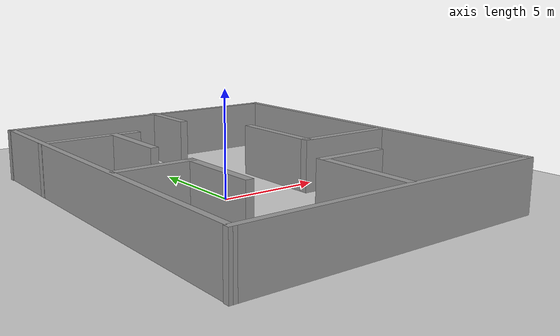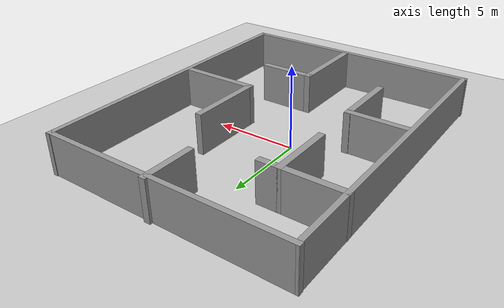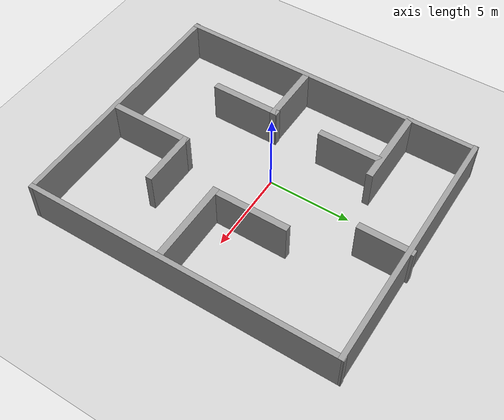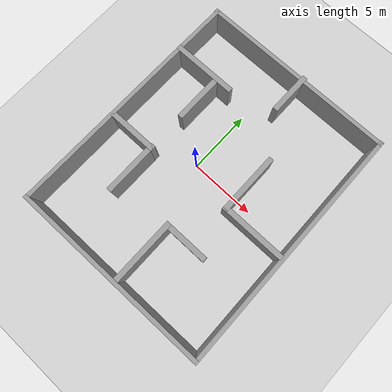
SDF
<?xml version='1.0'?>
<sdf version='1.7'>
  <world name="default">
    <include>
      <uri>model://ground_plane</uri>
    </include>
    <include>
      <uri>model://sun</uri>
    </include>

<!-- Model -->
    <model name='square'>
      <pose>1.12895 -0.095613 0 0 -0 0</pose>
      <link name='Wall_25'>
        <collision name='Wall_25_Collision'>
          <geometry>
            <box>
              <size>15.4835 0.3 2.5</size>
            </box>
          </geometry>
          <pose>0 0 1.25 0 -0 0</pose>
        </collision>
        <visual name='Wall_25_Visual'>
          <pose>0 0 1.25 0 -0 0</pose>
          <geometry>
            <box>
              <size>15.4835 0.3 2.5</size>
            </box>
          </geometry>
          <material>
            <script>
              <uri>file://media/materials/scripts/gazebo.material</uri>
              <name>Gazebo/Grey</name>
            </script>
            <ambient>1 1 1 1</ambient>
          </material>
          <meta>
            <layer>0</layer>
          </meta>
        </visual>
        <pose>0 -9.36301 0 0 -0 0.007859</pose>
      </link>
      <link name='Wall_27'>
        <collision name='Wall_27_Collision'>
          <geometry>
            <box>
              <size>18.9117 0.3 2.5</size>
            </box>
          </geometry>
          <pose>0 0 1.25 0 -0 0</pose>
        </collision>
        <visual name='Wall_27_Visual'>
          <pose>0 0 1.25 0 -0 0</pose>
          <geometry>
            <box>
              <size>18.9117 0.3 2.5</size>
            </box>
          </geometry>
          <material>
            <script>
              <uri>file://media/materials/scripts/gazebo.material</uri>
              <name>Gazebo/Grey</name>
            </script>
            <ambient>1 1 1 1</ambient>
          </material>
          <meta>
            <layer>0</layer>
          </meta>
        </visual>
        <pose>7.52164 0.002357 0 0 -0 1.5783</pose>
      </link>
      <link name='Wall_29'>
        <collision name='Wall_29_Collision'>
          <geometry>
            <box>
              <size>18.9911 0.3 2.5</size>
            </box>
          </geometry>
          <pose>0 0 1.25 0 -0 0</pose>
        </collision>
        <visual name='Wall_29_Visual'>
          <pose>0 0 1.25 0 -0 0</pose>
          <geometry>
            <box>
              <size>18.9911 0.3 2.5</size>
            </box>
          </geometry>
          <material>
            <script>
              <uri>file://media/materials/scripts/gazebo.material</uri>
              <name>Gazebo/Grey</name>
            </script>
            <ambient>1 1 1 1</ambient>
          </material>
          <meta>
            <layer>0</layer>
          </meta>
        </visual>
        <pose>-7.51195 -0.077192 0 0 -0 1.56654</pose>
      </link>
      <link name='Wall_30'>
        <collision name='Wall_30_Collision'>
          <geometry>
            <box>
              <size>15.2637 0.3 2.5</size>
            </box>
          </geometry>
          <pose>0 0 1.25 0 -0 0</pose>
        </collision>
        <visual name='Wall_30_Visual'>
          <pose>0 0 1.25 0 -0 0</pose>
          <geometry>
            <box>
              <size>15.2637 0.3 2.5</size>
            </box>
          </geometry>
          <material>
            <script>
              <uri>file://media/materials/scripts/gazebo.material</uri>
              <name>Gazebo/Grey</name>
            </script>
            <ambient>1 1 1 1</ambient>
          </material>
          <meta>
            <layer>0</layer>
          </meta>
        </visual>
        <pose>-0.030082 9.26829 0 0 -0 0</pose>
      </link>
      <link name='Wall_33'>
        <collision name='Wall_33_Collision'>
          <geometry>
            <box>
              <size>5 0.4 2.5</size>
            </box>
          </geometry>
          <pose>0 0 1.25 0 -0 0</pose>
        </collision>
        <visual name='Wall_33_Visual'>
          <pose>0 0 1.25 0 -0 0</pose>
          <geometry>
            <box>
              <size>5 0.4 2.5</size>
            </box>
          </geometry>
          <material>
            <script>
              <uri>file://media/materials/scripts/gazebo.material</uri>
              <name>Gazebo/Grey</name>
            </script>
            <ambient>1 1 1 1</ambient>
          </material>
          <meta>
            <layer>0</layer>
          </meta>
        </visual>
        <pose>0.575822 -6.76239 0 0 -0 1.5708</pose>
      </link>
      <link name='Wall_34'>
        <collision name='Wall_34_Collision'>
          <geometry>
            <box>
              <size>3.5 0.4 2.5</size>
            </box>
          </geometry>
          <pose>0 0 1.25 0 -0 0</pose>
        </collision>
        <visual name='Wall_34_Visual'>
          <pose>0 0 1.25 0 -0 0</pose>
          <geometry>
            <box>
              <size>3.5 0.4 2.5</size>
            </box>
          </geometry>
          <material>
            <script>
              <uri>file://media/materials/scripts/gazebo.material</uri>
              <name>Gazebo/Grey</name>
            </script>
            <ambient>1 1 1 1</ambient>
          </material>
          <meta>
            <layer>0</layer>
          </meta>
        </visual>
        <pose>2.12582 -4.46239 0 0 -0 0</pose>
      </link>
      <link name='Wall_36'>
        <collision name='Wall_36_Collision'>
          <geometry>
            <box>
              <size>3.8287 0.4 2.5</size>
            </box>
          </geometry>
          <pose>0 0 1.25 0 -0 0</pose>
        </collision>
        <visual name='Wall_36_Visual'>
          <pose>0 0 1.25 0 -0 0</pose>
          <geometry>
            <box>
              <size>3.8287 0.4 2.5</size>
            </box>
          </geometry>
          <material>
            <script>
              <uri>file://media/materials/scripts/gazebo.material</uri>
              <name>Gazebo/Grey</name>
            </script>
            <ambient>1 1 1 1</ambient>
          </material>
          <meta>
            <layer>0</layer>
          </meta>
        </visual>
        <pose>-5.59269 -1.42545 0 0 -0 0</pose>
      </link>
      <link name='Wall_37'>
        <collision name='Wall_37_Collision'>
          <geometry>
            <box>
              <size>4.25 0.4 2.5</size>
            </box>
          </geometry>
          <pose>0 0 1.25 0 -0 0</pose>
        </collision>
        <visual name='Wall_37_Visual'>
          <pose>0 0 1.25 0 -0 0</pose>
          <geometry>
            <box>
              <size>4.25 0.4 2.5</size>
            </box>
          </geometry>
          <material>
            <script>
              <uri>file://media/materials/scripts/gazebo.material</uri>
              <name>Gazebo/Grey</name>
            </script>
            <ambient>1 1 1 1</ambient>
          </material>
          <meta>
            <layer>0</layer>
          </meta>
        </visual>
        <pose>-3.87849 -3.30471 0 0 -0 -1.5708</pose>
      </link>
      <link name='Wall_39'>
        <collision name='Wall_39_Collision'>
          <geometry>
            <box>
              <size>5 0.4 2.5</size>
            </box>
          </geometry>
          <pose>0 0 1.25 0 -0 0</pose>
        </collision>
        <visual name='Wall_39_Visual'>
          <pose>0 0 1.25 0 -0 0</pose>
          <geometry>
            <box>
              <size>5 0.4 2.5</size>
            </box>
          </geometry>
          <material>
            <script>
              <uri>file://media/materials/scripts/gazebo.material</uri>
              <name>Gazebo/Grey</name>
            </script>
            <ambient>1 1 1 1</ambient>
          </material>
          <meta>
            <layer>0</layer>
          </meta>
        </visual>
        <pose>-5.15195 5.30261 0 0 -0 0</pose>
      </link>
      <link name='Wall_41'>
        <collision name='Wall_41_Collision'>
          <geometry>
            <box>
              <size>4 0.4 2.5</size>
            </box>
          </geometry>
          <pose>0 0 1.25 0 -0 0</pose>
        </collision>
        <visual name='Wall_41_Visual'>
          <pose>0 0 1.25 0 -0 0</pose>
          <geometry>
            <box>
              <size>4 0.4 2.5</size>
            </box>
          </geometry>
          <material>
            <script>
              <uri>file://media/materials/scripts/gazebo.material</uri>
              <name>Gazebo/Grey</name>
            </script>
            <ambient>1 1 1 1</ambient>
          </material>
          <meta>
            <layer>0</layer>
          </meta>
        </visual>
        <pose>-3.92995 3.50261 0 0 -0 -1.5708</pose>
      </link>
      <link name='Wall_43'>
        <collision name='Wall_43_Collision'>
          <geometry>
            <box>
              <size>5.00013 0.4 2.5</size>
            </box>
          </geometry>
          <pose>0 0 1.25 0 -0 0</pose>
        </collision>
        <visual name='Wall_43_Visual'>
          <pose>0 0 1.25 0 -0 0</pose>
          <geometry>
            <box>
              <size>5.00013 0.4 2.5</size>
            </box>
          </geometry>
          <material>
            <script>
              <uri>file://media/materials/scripts/gazebo.material</uri>
              <name>Gazebo/Grey</name>
            </script>
            <ambient>1 1 1 1</ambient>
          </material>
          <meta>
            <layer>0</layer>
          </meta>
        </visual>
        <pose>4.95605 -1.05539 0 0 -0 0</pose>
      </link>
      <link name='Wall_45'>
        <collision name='Wall_45_Collision'>
          <geometry>
            <box>
              <size>4.74975 0.4 2.5</size>
            </box>
          </geometry>
          <pose>0 0 1.25 0 -0 0</pose>
        </collision>
        <visual name='Wall_45_Visual'>
          <pose>0 0 1.25 0 -0 0</pose>
          <geometry>
            <box>
              <size>4.74975 0.4 2.5</size>
            </box>
          </geometry>
          <material>
            <script>
              <uri>file://media/materials/scripts/gazebo.material</uri>
              <name>Gazebo/Grey</name>
            </script>
            <ambient>1 1 1 1</ambient>
          </material>
          <meta>
            <layer>0</layer>
          </meta>
        </visual>
        <pose>2.65605 1.11961 0 0 -0 1.5708</pose>
      </link>
      <link name='Wall_48'>
        <collision name='Wall_48_Collision'>
          <geometry>
            <box>
              <size>3.25047 0.4 2.5</size>
            </box>
          </geometry>
          <pose>0 0 1.25 0 -0 0</pose>
        </collision>
        <visual name='Wall_48_Visual'>
          <pose>0 0 1.25 0 -0 0</pose>
          <geometry>
            <box>
              <size>3.25047 0.4 2.5</size>
            </box>
          </geometry>
          <material>
            <script>
              <uri>file://media/materials/scripts/gazebo.material</uri>
              <name>Gazebo/Grey</name>
            </script>
            <ambient>1 1 1 1</ambient>
          </material>
          <meta>
            <layer>0</layer>
          </meta>
        </visual>
        <pose>0.552047 7.94861 0 0 -0 -1.5708</pose>
      </link>
      <static>1</static>
    </model>
  </world>
</sdf>
